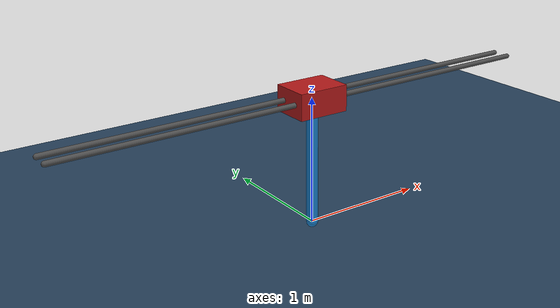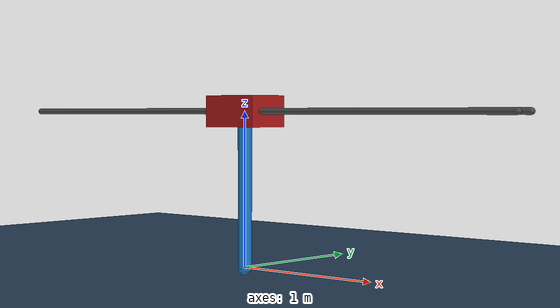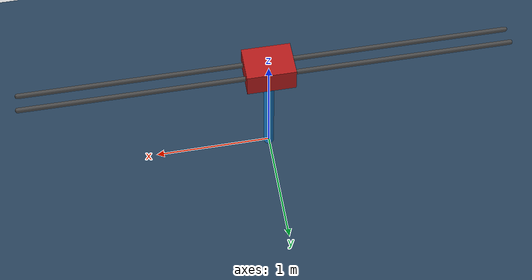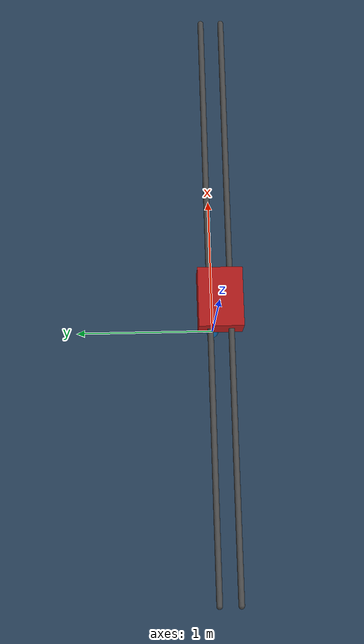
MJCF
<mujoco model="cartpole">
    <compiler angle="radian" />
    <!-- 设置仿真的时间步长为 0.01 秒 -->
    <option timestep="0.01" >
        <!-- 单独开一个 flag 标签，把 contact 设为 "disable" -->
        <!-- 此元素用于设置启用和禁用仿真流程不同部分的标志。运行时实际使用的标志表示为两个整数的位，即 mjModel.opt.disableflags 和 mjModel.opt.enableflags，分别用于禁用标准功能和启用可选功能。 -->
        <!-- 但是mjlab会将该场景里的物体放到另一个场景，因此这里的定义是无效的 https://github.com/mujocolab/mjlab/issues/885 -->
        <flag contact="disable" />
    </option>
    <!--
      定义了一些默认参数
      class="pole" 下面的内容会自动应用到 pole 相关的 body/geom/joint 上，减少重复代码
    -->
    <default>
        <default class="pole">
            <joint type="hinge" axis="0 1 0" damping="2e-6" limited="false" />
            <!-- 这里的fromto为角度0时的指向 -->
            <geom type="capsule" fromto="0 0 0 0 0 -1" size="0.045" material="pole" mass=".1" />
        </default>
    </default>

    <!--
      定义了材质和纹理，比如地板的格子纹理、cart（小车）、pole（杆）等的颜色
    -->
    <asset>
        <texture name="grid" type="2d" builtin="checker" rgb1=".1 .2 .3" rgb2=".2 .3 .4" width="300"
            height="300" />
        <material name="grid" texture="grid" texrepeat="8 8" reflectance=".2" />
        <material name="cart" rgba=".7 .1 .1 1" />
        <material name="pole" rgba=".1 .5 .8 1" />
        <material name="decoration" rgba=".3 .3 .3 1" />
    </asset>

    <!-- 场景的主体部分 -->
    <worldbody>
        <!-- 设置光源 -->
        <light name="light" pos="0 0 6" />
        <!-- 设置摄像机视角 -->
        <camera name="fixed" pos="0 -4 1" zaxis="0 -1 0" />
        <camera name="lookatcart" mode="targetbody" target="cart" pos="0 -2 2" />
        <!-- geom: 定义几何体 -->
        <geom name="floor" pos="0 0 -.05" size="4 4 .2" type="plane" material="grid" />
        <geom name="rail1" type="capsule" pos="0 .07 1" zaxis="1 0 0" size="0.02 2"
            material="decoration"/>
        <geom name="rail2" type="capsule" pos="0 -.07 1" zaxis="1 0 0" size="0.02 2"
            material="decoration"/>
        <!-- 定义一个刚体。只有body可以运动；可以有多个 -->
        <body name="cart" pos="0 0 1">
            <!-- type: 滑动关节 -->
            <joint name="slider" type="slide" limited="true" axis="1 0 0" range="-1.8 1.8"
                solreflimit=".08 1" damping="5e-4" />
            <!-- 位置: 都以body原点为开始 所以有穿模 -->
            <!-- 【重要】这里得定义不碰撞(即使上面已经定义了) 不然会和轨道碰撞影响结果 方法是设置 contype="0" conaffinity="0" -->
            <geom name="cart" type="box" size="0.2 0.15 0.1" material="cart" mass="1" contype="0" conaffinity="0" />
            <body name="pole_1" childclass="pole">
                <joint name="hinge_1" />
                <geom name="pole_1" />
            </body>
        </body>
    </worldbody>

    <!-- 定义了一个马达（motor），控制小车的滑动关节（slider），gear 表示力矩放大倍数，ctrlrange 控制输入范围 -->
    <actuator>
        <motor name="slide" joint="slider" gear="10" ctrllimited="true" ctrlrange="-1 1" />
    </actuator>
</mujoco>
